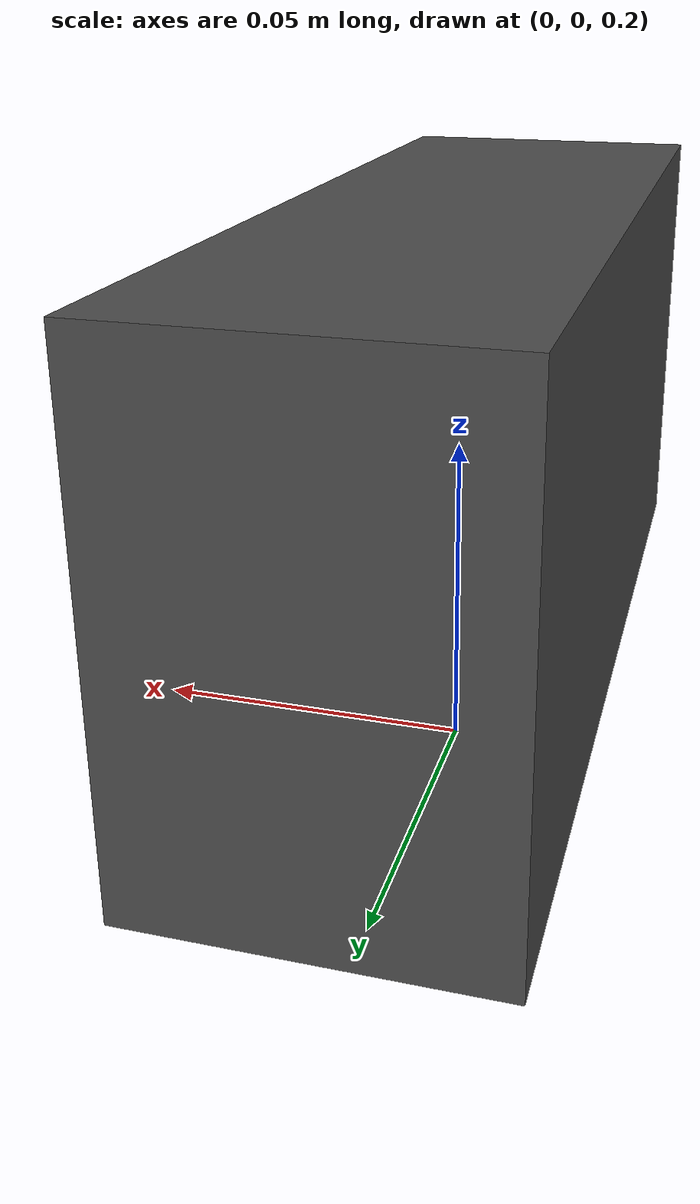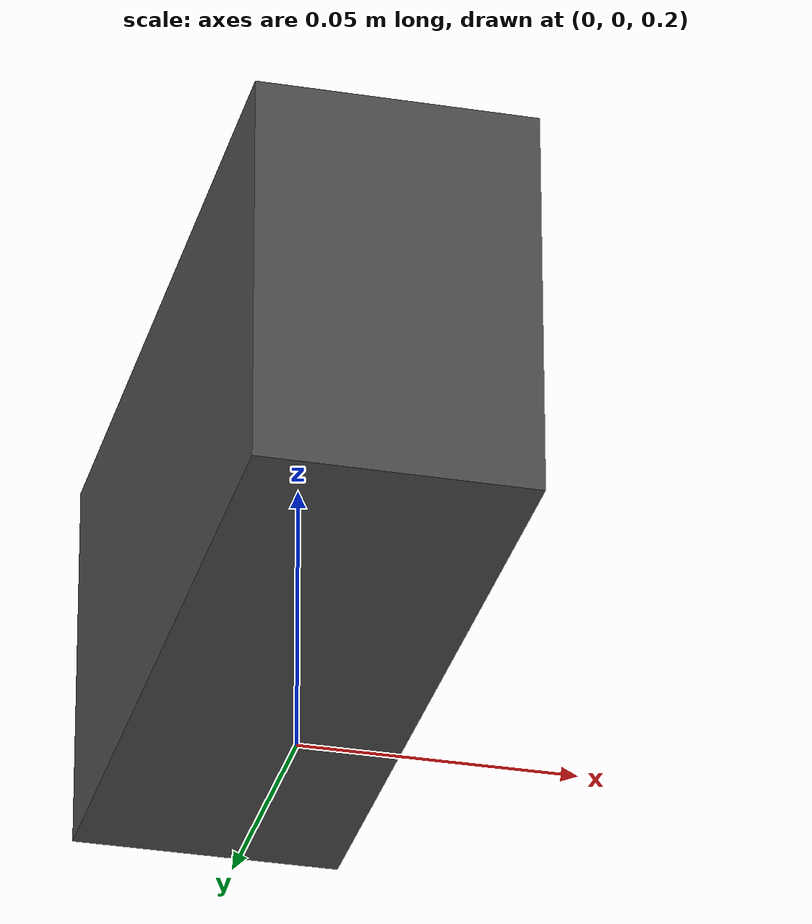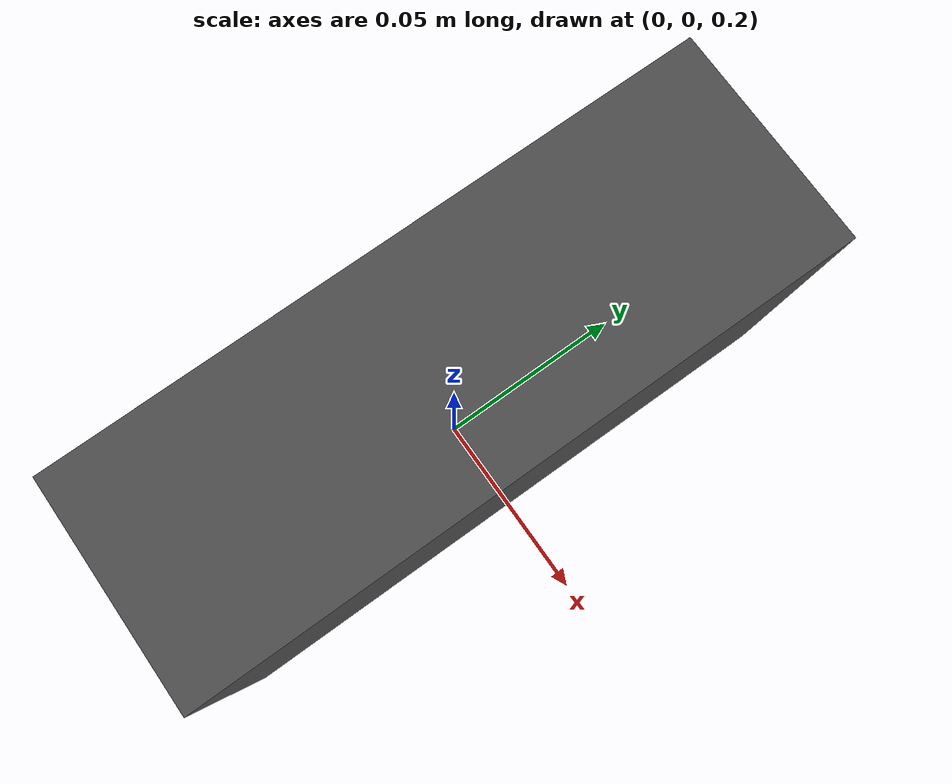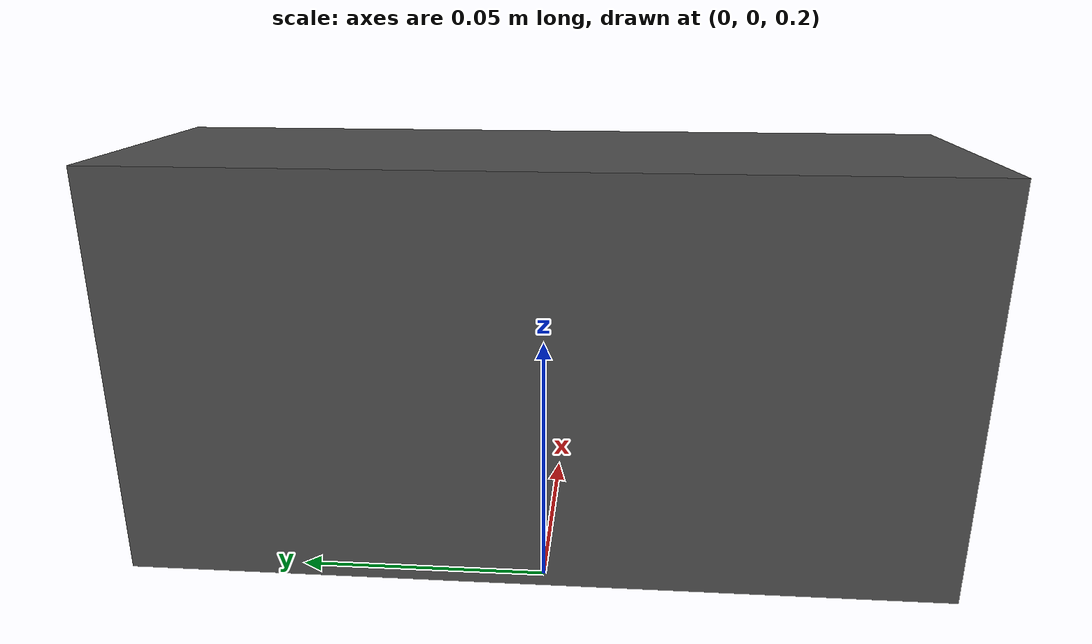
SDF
<?xml version="1.0"?>
<sdf version="1.7">
  <model name="sphere_manipulator">
    <!-- Pose X_WG of the gripper model frame G in the world frame W. -->
    <pose>0.0 0.0 0.25 -1.57 0 1.57</pose>
    <joint name="weld_base" type="fixed">
      <parent>world</parent>
      <child>y_translate_link</child>
    </joint>
    <link name="y_translate_link">
      <inertial>
        <mass>0.0001</mass>
        <inertia>
          <ixx>0.0001</ixx>
          <ixy>0</ixy>
          <ixz>0</ixz>
          <iyy>0.0001</iyy>
          <iyz>0</iyz>
          <izz>0.0001</izz>
        </inertia>
      </inertial>
    </link>
    <joint name="translate_joint" type="prismatic">
      <parent>y_translate_link</parent>
      <child>body</child>
      <axis>
        <xyz expressed_in="__model__">0 -1 0</xyz>
        <!-- Drake attaches an actuator to all joints with a non-zero effort
             limit. We do want an actuator for this joint. -->
        <limit>
          <effort>500</effort>
        </limit>
      </axis>
    </joint>
    <link name="body">
      <pose>0 0 0 0 0 0</pose>
      <inertial>
        <mass>0.988882</mass>
        <inertia>
          <ixx>0.162992</ixx>
          <ixy>0</ixy>
          <ixz>0</ixz>
          <iyy>0.162992</iyy>
          <iyz>0</iyz>
          <izz>0.164814</izz>
        </inertia>
      </inertial>
      <visual name="visual">
        <geometry>
          <box>
            <size>0.146 0.0725 0.049521</size>
          </box>
        </geometry>
        <material>
          <diffuse>0.3 0.3 0.3 0.9</diffuse>
        </material>
      </visual>
    </link>
  </model>
</sdf>
